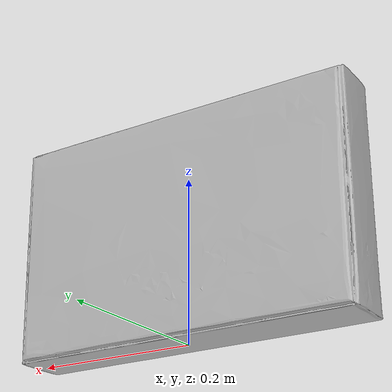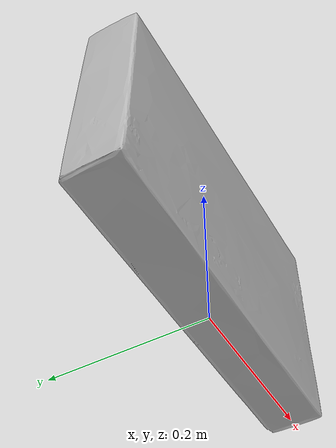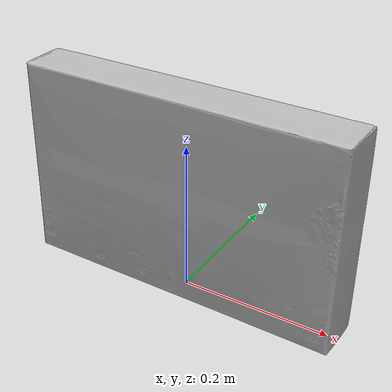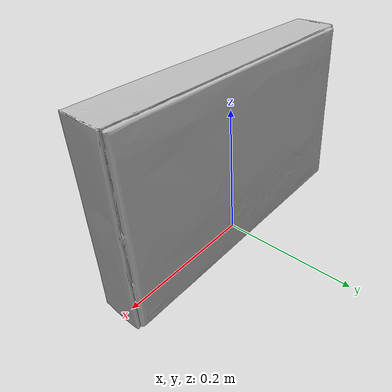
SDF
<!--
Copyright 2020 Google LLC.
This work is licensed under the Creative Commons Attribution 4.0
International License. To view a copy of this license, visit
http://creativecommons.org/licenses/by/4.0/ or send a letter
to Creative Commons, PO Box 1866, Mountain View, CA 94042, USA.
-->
<?xml version="1.0" ?>
<sdf version="1.6">
  <model name="LEGO_Creationary_Game_ZJa163wlWp2">
    <link name="link_0">
      <visual name="visual">
        <geometry>
          <mesh>
            <uri>meshes/model.obj</uri>
          </mesh>
        </geometry>
      </visual>
      <collision name="collision_0">
        <geometry>
          <mesh>
            <uri>meshes/model.obj</uri>
          </mesh>
        </geometry>
      </collision>
    </link>
  </model>
</sdf>
